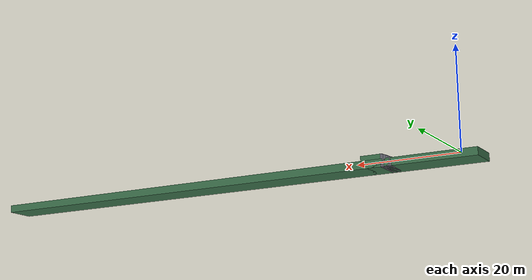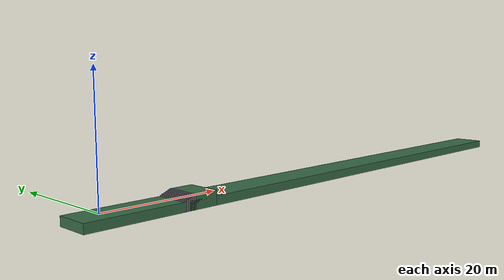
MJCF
<?xml version="1.0" encoding="utf-8"?>
<mujoco model="vrl flat with six 15cm stairs">
  <!-- Six ascending 35cm treads start at x=12m; top landing at z=0.90m. -->
  <statistic center="12 0 0.5" extent="7"/>
  <visual><headlight diffuse="0.7 0.7 0.7" ambient="0.25 0.25 0.25"/>
    <global azimuth="-125" elevation="-22"/></visual>
  <default><default class="test_ground">
    <geom type="box" friction="0.8 0.8 0.8" priority="2" contype="1" conaffinity="1"/>
  </default></default>
  <worldbody>
    <light pos="12 0 8" dir="0 0 -1" directional="true"/>
    <geom name="stairs_flat" class="test_ground" pos="49 0 -0.75" size="53 3 0.75" rgba="0.22 0.42 0.28 1"/>
    <geom name="step15_1" class="test_ground" pos="12.175 0 -0.675" size="0.175 3 0.825" rgba="0.42 0.42 0.46 1"/>
    <geom name="step15_2" class="test_ground" pos="12.525 0 -0.600" size="0.175 3 0.900" rgba="0.42 0.42 0.46 1"/>
    <geom name="step15_3" class="test_ground" pos="12.875 0 -0.525" size="0.175 3 0.975" rgba="0.42 0.42 0.46 1"/>
    <geom name="step15_4" class="test_ground" pos="13.225 0 -0.450" size="0.175 3 1.050" rgba="0.42 0.42 0.46 1"/>
    <geom name="step15_5" class="test_ground" pos="13.575 0 -0.375" size="0.175 3 1.125" rgba="0.42 0.42 0.46 1"/>
    <geom name="step15_6" class="test_ground" pos="13.925 0 -0.300" size="0.175 3 1.200" rgba="0.42 0.42 0.46 1"/>
    <geom name="step15_landing" class="test_ground" pos="16.05 0 -0.300" size="1.95 3 1.200" rgba="0.22 0.42 0.28 1"/>
  </worldbody>
  <contact>
    <pair geom1="RR" geom2="stairs_flat"/><pair geom1="RL" geom2="stairs_flat"/><pair geom1="FR" geom2="stairs_flat"/><pair geom1="FL" geom2="stairs_flat"/>
    <pair geom1="RR" geom2="step15_1"/><pair geom1="RL" geom2="step15_1"/><pair geom1="FR" geom2="step15_1"/><pair geom1="FL" geom2="step15_1"/>
    <pair geom1="RR" geom2="step15_2"/><pair geom1="RL" geom2="step15_2"/><pair geom1="FR" geom2="step15_2"/><pair geom1="FL" geom2="step15_2"/>
    <pair geom1="RR" geom2="step15_3"/><pair geom1="RL" geom2="step15_3"/><pair geom1="FR" geom2="step15_3"/><pair geom1="FL" geom2="step15_3"/>
    <pair geom1="RR" geom2="step15_4"/><pair geom1="RL" geom2="step15_4"/><pair geom1="FR" geom2="step15_4"/><pair geom1="FL" geom2="step15_4"/>
    <pair geom1="RR" geom2="step15_5"/><pair geom1="RL" geom2="step15_5"/><pair geom1="FR" geom2="step15_5"/><pair geom1="FL" geom2="step15_5"/>
    <pair geom1="RR" geom2="step15_6"/><pair geom1="RL" geom2="step15_6"/><pair geom1="FR" geom2="step15_6"/><pair geom1="FL" geom2="step15_6"/>
    <pair geom1="RR" geom2="step15_landing"/><pair geom1="RL" geom2="step15_landing"/><pair geom1="FR" geom2="step15_landing"/><pair geom1="FL" geom2="step15_landing"/>
  </contact>
</mujoco>
